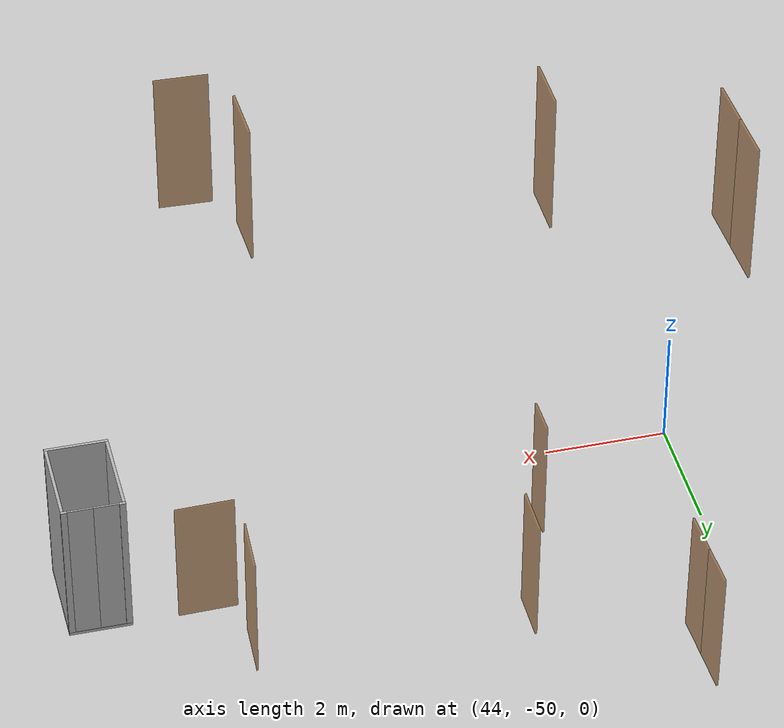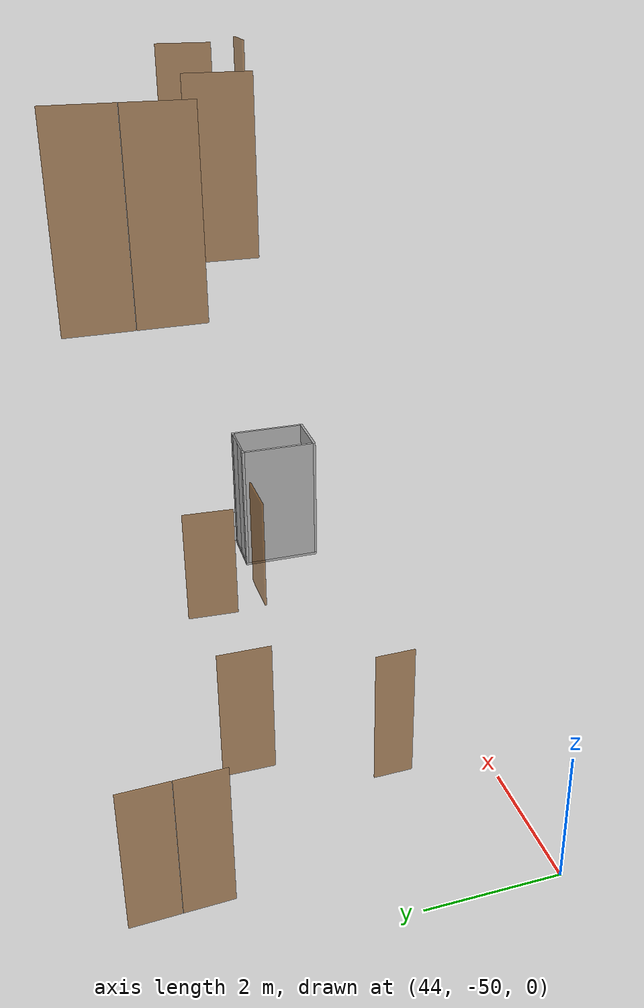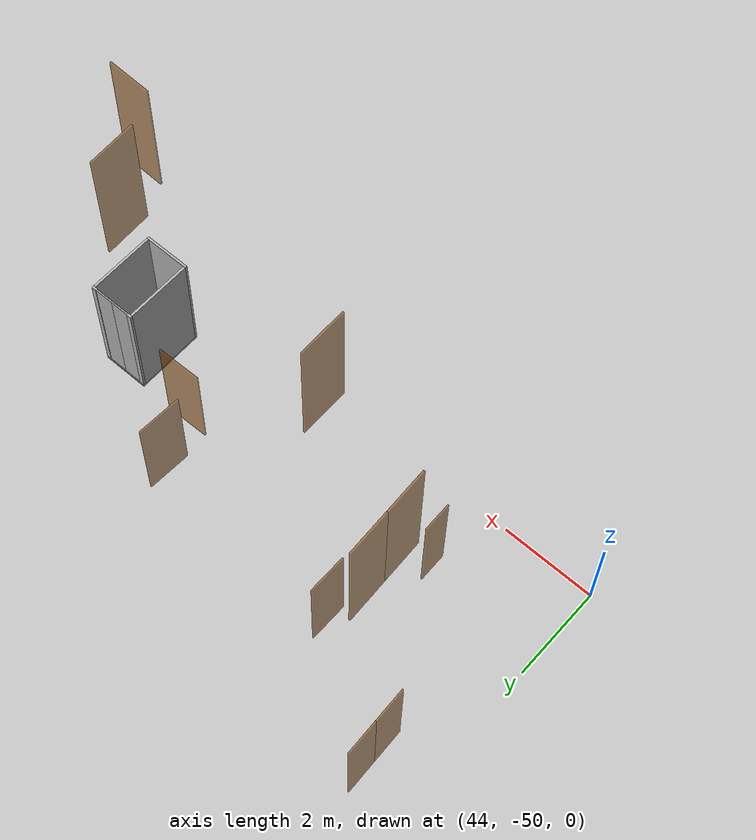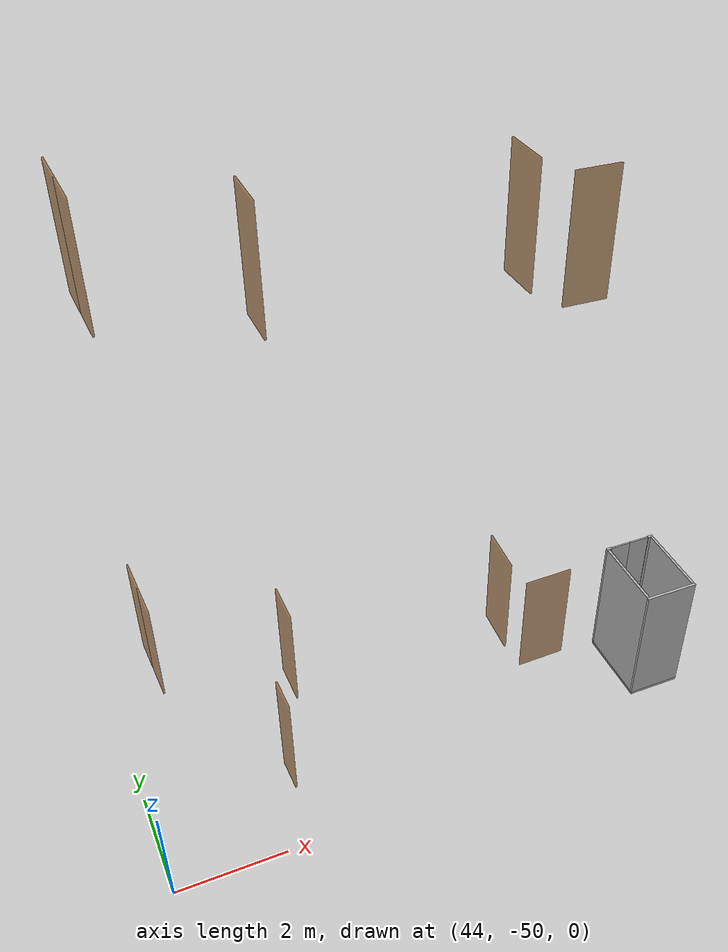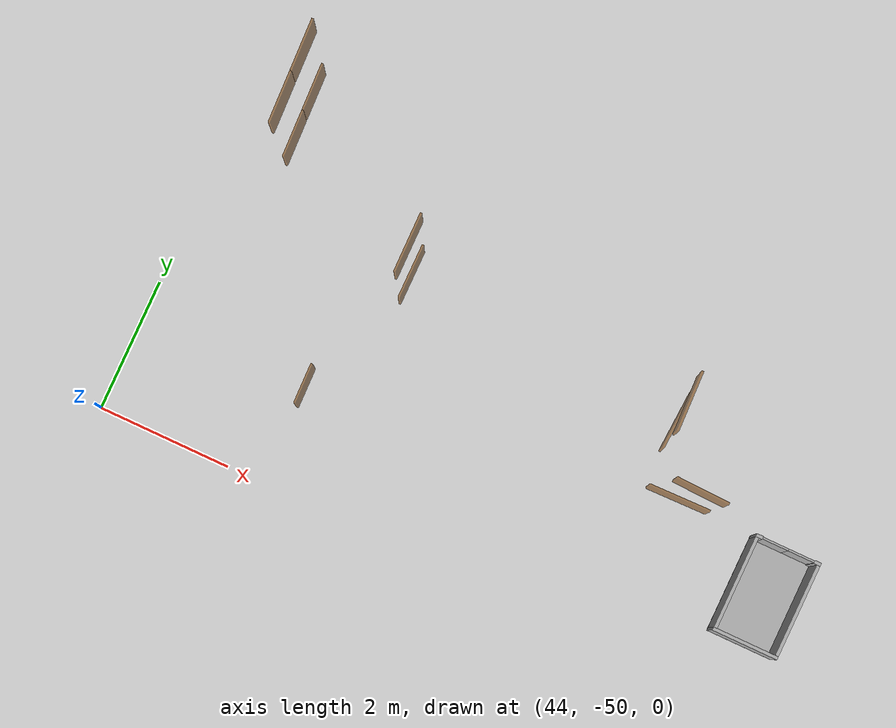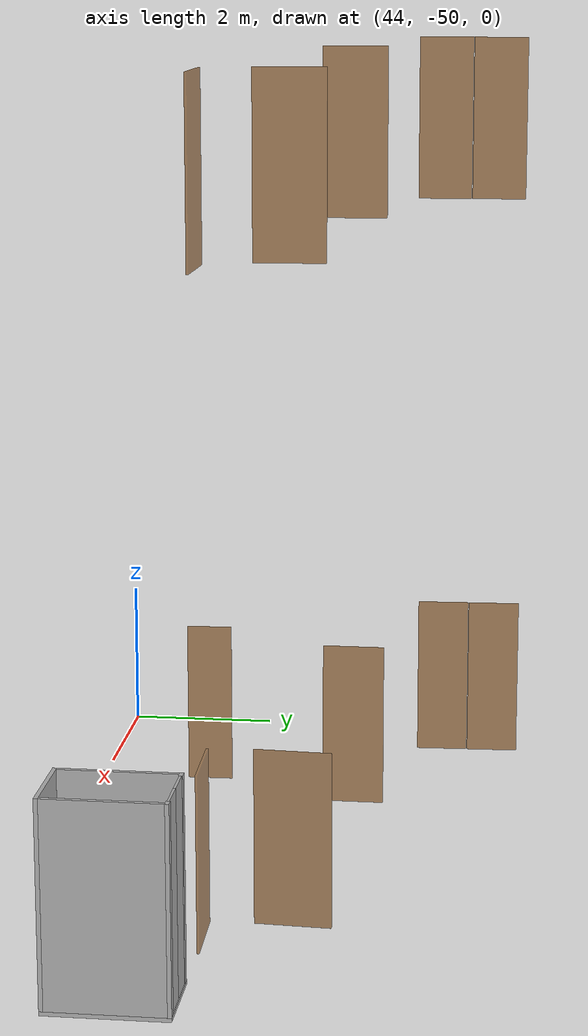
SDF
<sdf version="1.7">
 <world name="sim_world">
  <model name="bano01">
   <pose>47.27149607737123 -46.41799548548202 0.0 0 0 1.5707963267948966</pose>
   <link name="right">
    <pose>0 0 1.11 0 0 0</pose>
    <visual name="right_visual">
     <geometry><box><size>0.8199446803225976 0.03 2.2</size></box></geometry>
     <material>
      <ambient>0.5 0.25 0 0.6</ambient>
      <diffuse>0.5 0.25 0 0.6</diffuse>
      <pbr><metal><metalness>0.0</metalness></metal></pbr>
     </material>
    </visual>
    <collision name="right_collision">
     <geometry><box><size>0.8199446803225976 0.03 2.2</size></box></geometry>
     <surface><contact><collide_bitmask>0x02</collide_bitmask></contact></surface>
    </collision>
    <inertial>
     <mass>50.0</mass>
     <inertia><ixx>20.17041666666667</ixx><iyy>22.967955328288866</iyy><izz>2.805038661622195</izz></inertia>
    </inertial>
   </link>
   <joint name="right_joint" type="revolute">
    <parent>world</parent>
    <child>right</child>
    <axis><xyz>0 0 -1</xyz><limit><lower>0</lower><upper>1.57</upper></limit></axis>
    <pose>0.4149723401612988 0 0 0 0 0</pose>
   </joint>
   <plugin name="register_component" filename="libregister_component.so">
    <component name="Door">
     <v_max_door>0.5</v_max_door>
     <a_max_door>0.3</a_max_door>
     <a_nom_door>0.15</a_nom_door>
     <dx_min_door>0.01</dx_min_door>
     <f_max_door>500.0</f_max_door>
     <ros_interface>true</ros_interface>
     <door name="bano01" type="SwingDoor" left_joint_name="empty_joint" right_joint_name="right_joint"/>
    </component>
   </plugin>
  </model>
  <model name="bano02">
   <pose>46.556525343689856 -48.4981205128844 0.0 0 0 1.5918249008363818</pose>
   <link name="right">
    <pose>0 0 1.11 0 0 0</pose>
    <visual name="right_visual">
     <geometry><box><size>0.6101771898056049 0.03 2.2</size></box></geometry>
     <material>
      <ambient>0.5 0.25 0 0.6</ambient>
      <diffuse>0.5 0.25 0 0.6</diffuse>
      <pbr><metal><metalness>0.0</metalness></metal></pbr>
     </material>
    </visual>
    <collision name="right_collision">
     <geometry><box><size>0.6101771898056049 0.03 2.2</size></box></geometry>
     <surface><contact><collide_bitmask>0x02</collide_bitmask></contact></surface>
    </collision>
    <inertial>
     <mass>50.0</mass>
     <inertia><ixx>20.17041666666667</ixx><iyy>21.717984178996108</iyy><izz>1.5550675123294382</izz></inertia>
    </inertial>
   </link>
   <joint name="right_joint" type="revolute">
    <parent>world</parent>
    <child>right</child>
    <axis><xyz>0 0 -1</xyz><limit><lower>0</lower><upper>1.57</upper></limit></axis>
    <pose>0.31008859490280244 0 0 0 0 0</pose>
   </joint>
   <plugin name="register_component" filename="libregister_component.so">
    <component name="Door">
     <v_max_door>0.5</v_max_door>
     <a_max_door>0.3</a_max_door>
     <a_nom_door>0.15</a_nom_door>
     <dx_min_door>0.01</dx_min_door>
     <f_max_door>500.0</f_max_door>
     <ros_interface>true</ros_interface>
     <door name="bano02" type="SwingDoor" left_joint_name="empty_joint" right_joint_name="right_joint"/>
    </component>
   </plugin>
  </model>
  <model name="bano05">
   <pose>52.06670083466635 -47.72443394818039 0.0 0 0 -3.1200870272772754</pose>
   <link name="right">
    <pose>0 0 1.11 0 0 0</pose>
    <visual name="right_visual">
     <geometry><box><size>0.9377301620501713 0.03 2.2</size></box></geometry>
     <material>
      <ambient>0.5 0.25 0 0.6</ambient>
      <diffuse>0.5 0.25 0 0.6</diffuse>
      <pbr><metal><metalness>0.0</metalness></metal></pbr>
     </material>
    </visual>
    <collision name="right_collision">
     <geometry><box><size>0.9377301620501713 0.03 2.2</size></box></geometry>
     <surface><contact><collide_bitmask>0x02</collide_bitmask></contact></surface>
    </collision>
    <inertial>
     <mass>50.0</mass>
     <inertia><ixx>20.17041666666667</ixx><iyy>23.830574403411006</iyy><izz>3.6676577367443364</izz></inertia>
    </inertial>
   </link>
   <joint name="right_joint" type="revolute">
    <parent>world</parent>
    <child>right</child>
    <axis><xyz>0 0 -1</xyz><limit><lower>0</lower><upper>1.57</upper></limit></axis>
    <pose>0.4738650810250857 0 0 0 0 0</pose>
   </joint>
   <plugin name="register_component" filename="libregister_component.so">
    <component name="Door">
     <v_max_door>0.5</v_max_door>
     <a_max_door>0.3</a_max_door>
     <a_nom_door>0.15</a_nom_door>
     <dx_min_door>0.01</dx_min_door>
     <f_max_door>500.0</f_max_door>
     <ros_interface>true</ros_interface>
     <door name="bano05" type="SwingDoor" left_joint_name="empty_joint" right_joint_name="right_joint"/>
    </component>
   </plugin>
  </model>
  <model name="TD0007CW">
   <pose>51.58219422672672 -46.71441391912132 0.0 0 0 1.5172743729555838</pose>
   <link name="right">
    <pose>0 0 1.11 0 0 0</pose>
    <visual name="right_visual">
     <geometry><box><size>0.9398812216442772 0.03 2.2</size></box></geometry>
     <material>
      <ambient>0.5 0.25 0 0.6</ambient>
      <diffuse>0.5 0.25 0 0.6</diffuse>
      <pbr><metal><metalness>0.0</metalness></metal></pbr>
     </material>
    </visual>
    <collision name="right_collision">
     <geometry><box><size>0.9398812216442772 0.03 2.2</size></box></geometry>
     <surface><contact><collide_bitmask>0x02</collide_bitmask></contact></surface>
    </collision>
    <inertial>
     <mass>50.0</mass>
     <inertia><ixx>20.17041666666667</ixx><iyy>23.847402961664752</iyy><izz>3.6844862949980794</izz></inertia>
    </inertial>
   </link>
   <joint name="right_joint" type="revolute">
    <parent>world</parent>
    <child>right</child>
    <axis><xyz>0 0 -1</xyz><limit><lower>0</lower><upper>1.57</upper></limit></axis>
    <pose>0.4749406108221386 0 0 0 0 0</pose>
   </joint>
   <plugin name="register_component" filename="libregister_component.so">
    <component name="Door">
     <v_max_door>0.5</v_max_door>
     <a_max_door>0.3</a_max_door>
     <a_nom_door>0.15</a_nom_door>
     <dx_min_door>0.01</dx_min_door>
     <f_max_door>500.0</f_max_door>
     <ros_interface>true</ros_interface>
     <door name="TD0007CW" type="SwingDoor" left_joint_name="empty_joint" right_joint_name="right_joint"/>
    </component>
   </plugin>
  </model>
  <model name="TD1001CP2">
   <pose>44.922773056907744 -44.991499308662824 0.0 0 0 -1.5348843775082168</pose>
   <link name="right">
    <pose>0.3594509958894393 0 1.11 0 0 0</pose>
    <visual name="right_visual">
     <geometry><box><size>0.7089019917788786 0.03 2.2</size></box></geometry>
     <material>
      <ambient>0.5 0.25 0 0.6</ambient>
      <diffuse>0.5 0.25 0 0.6</diffuse>
      <pbr><metal><metalness>0.0</metalness></metal></pbr>
     </material>
    </visual>
    <collision name="right_collision">
     <geometry><box><size>0.7089019917788786 0.03 2.2</size></box></geometry>
     <surface><contact><collide_bitmask>0x02</collide_bitmask></contact></surface>
    </collision>
    <inertial>
     <mass>50.0</mass>
     <inertia><ixx>20.17041666666667</ixx><iyy>22.260591808116928</iyy><izz>2.0976751414502552</izz></inertia>
    </inertial>
   </link>
   <joint name="right_joint" type="revolute">
    <parent>world</parent>
    <child>right</child>
    <axis><xyz>0 0 -1</xyz><limit><lower>0</lower><upper>1.57</upper></limit></axis>
    <pose>0.3594509958894393 0 0 0 0 0</pose>
   </joint>
   <link name="left">
    <pose>-0.3594509958894393 0 1.11 0 0 0</pose>
    <visual name="left_visual">
     <geometry><box><size>0.7089019917788786 0.03 2.2</size></box></geometry>
     <material>
      <ambient>0.5 0.25 0 0.6</ambient>
      <diffuse>0.5 0.25 0 0.6</diffuse>
      <pbr><metal><metalness>0.0</metalness></metal></pbr>
     </material>
    </visual>
    <collision name="left_collision">
     <geometry><box><size>0.7089019917788786 0.03 2.2</size></box></geometry>
     <surface><contact><collide_bitmask>0x02</collide_bitmask></contact></surface>
    </collision>
    <inertial>
     <mass>50.0</mass>
     <inertia><ixx>20.17041666666667</ixx><iyy>22.260591808116928</iyy><izz>2.0976751414502552</izz></inertia>
    </inertial>
   </link>
   <joint name="left_joint" type="revolute">
    <parent>world</parent>
    <child>left</child>
    <axis><xyz>0 0 -1</xyz><limit><lower>-1.57</lower><upper>0</upper></limit></axis>
    <pose>-0.3594509958894393 0 0 0 0 0</pose>
   </joint>
   <plugin name="register_component" filename="libregister_component.so">
    <component name="Door">
     <v_max_door>0.5</v_max_door>
     <a_max_door>0.3</a_max_door>
     <a_nom_door>0.15</a_nom_door>
     <dx_min_door>0.01</dx_min_door>
     <f_max_door>500.0</f_max_door>
     <ros_interface>true</ros_interface>
     <door name="TD1001CP2" type="DoubleSwingDoor" left_joint_name="left_joint" right_joint_name="right_joint"/>
    </component>
   </plugin>
  </model>
  <model name="TD1118CP4">
   <pose>44.94644914665497 -45.02413210114766 8.0 0 0 -1.5336877245950296</pose>
   <link name="right">
    <pose>0.3714555084669651 0 1.11 0 0 0</pose>
    <visual name="right_visual">
     <geometry><box><size>0.7329110169339302 0.03 2.2</size></box></geometry>
     <material>
      <ambient>0.5 0.25 0 0.6</ambient>
      <diffuse>0.5 0.25 0 0.6</diffuse>
      <pbr><metal><metalness>0.0</metalness></metal></pbr>
     </material>
    </visual>
    <collision name="right_collision">
     <geometry><box><size>0.7329110169339302 0.03 2.2</size></box></geometry>
     <surface><contact><collide_bitmask>0x02</collide_bitmask></contact></surface>
    </collision>
    <inertial>
     <mass>50.0</mass>
     <inertia><ixx>20.17041666666667</ixx><iyy>22.40482732809637</iyy><izz>2.2419106614296993</izz></inertia>
    </inertial>
   </link>
   <joint name="right_joint" type="revolute">
    <parent>world</parent>
    <child>right</child>
    <axis><xyz>0 0 -1</xyz><limit><lower>0</lower><upper>1.57</upper></limit></axis>
    <pose>0.3714555084669651 0 0 0 0 0</pose>
   </joint>
   <link name="left">
    <pose>-0.3714555084669651 0 1.11 0 0 0</pose>
    <visual name="left_visual">
     <geometry><box><size>0.7329110169339302 0.03 2.2</size></box></geometry>
     <material>
      <ambient>0.5 0.25 0 0.6</ambient>
      <diffuse>0.5 0.25 0 0.6</diffuse>
      <pbr><metal><metalness>0.0</metalness></metal></pbr>
     </material>
    </visual>
    <collision name="left_collision">
     <geometry><box><size>0.7329110169339302 0.03 2.2</size></box></geometry>
     <surface><contact><collide_bitmask>0x02</collide_bitmask></contact></surface>
    </collision>
    <inertial>
     <mass>50.0</mass>
     <inertia><ixx>20.17041666666667</ixx><iyy>22.40482732809637</iyy><izz>2.2419106614296993</izz></inertia>
    </inertial>
   </link>
   <joint name="left_joint" type="revolute">
    <parent>world</parent>
    <child>left</child>
    <axis><xyz>0 0 -1</xyz><limit><lower>-1.57</lower><upper>0</upper></limit></axis>
    <pose>-0.3714555084669651 0 0 0 0 0</pose>
   </joint>
   <plugin name="register_component" filename="libregister_component.so">
    <component name="Door">
     <v_max_door>0.5</v_max_door>
     <a_max_door>0.3</a_max_door>
     <a_nom_door>0.15</a_nom_door>
     <dx_min_door>0.01</dx_min_door>
     <f_max_door>500.0</f_max_door>
     <ros_interface>true</ros_interface>
     <door name="TD1118CP4" type="DoubleSwingDoor" left_joint_name="left_joint" right_joint_name="right_joint"/>
    </component>
   </plugin>
  </model>
  <model name="TD0114CW">
   <pose>51.50515808954793 -46.74820920088596 8.0 0 0 1.6056425163225825</pose>
   <link name="right">
    <pose>0 0 1.11 0 0 0</pose>
    <visual name="right_visual">
     <geometry><box><size>0.8454856513248106 0.03 2.2</size></box></geometry>
     <material>
      <ambient>0.5 0.25 0 0.6</ambient>
      <diffuse>0.5 0.25 0 0.6</diffuse>
      <pbr><metal><metalness>0.0</metalness></metal></pbr>
     </material>
    </visual>
    <collision name="right_collision">
     <geometry><box><size>0.8454856513248106 0.03 2.2</size></box></geometry>
     <surface><contact><collide_bitmask>0x02</collide_bitmask></contact></surface>
    </collision>
    <inertial>
     <mass>50.0</mass>
     <inertia><ixx>20.17041666666667</ixx><iyy>23.145191610817253</iyy><izz>2.9822749441505803</izz></inertia>
    </inertial>
   </link>
   <joint name="right_joint" type="revolute">
    <parent>world</parent>
    <child>right</child>
    <axis><xyz>0 0 -1</xyz><limit><lower>0</lower><upper>1.57</upper></limit></axis>
    <pose>0.4277428256624053 0 0 0 0 0</pose>
   </joint>
   <plugin name="register_component" filename="libregister_component.so">
    <component name="Door">
     <v_max_door>0.5</v_max_door>
     <a_max_door>0.3</a_max_door>
     <a_nom_door>0.15</a_nom_door>
     <dx_min_door>0.01</dx_min_door>
     <f_max_door>500.0</f_max_door>
     <ros_interface>true</ros_interface>
     <door name="TD0114CW" type="SwingDoor" left_joint_name="empty_joint" right_joint_name="right_joint"/>
    </component>
   </plugin>
  </model>
  <model name="bano1">
   <pose>47.28208015738405 -46.41913130619041 8.0 0 0 1.5764696971908632</pose>
   <link name="right">
    <pose>0 0 1.11 0 0 0</pose>
    <visual name="right_visual">
     <geometry><box><size>0.8397545239237783 0.03 2.2</size></box></geometry>
     <material>
      <ambient>0.5 0.25 0 0.6</ambient>
      <diffuse>0.5 0.25 0 0.6</diffuse>
      <pbr><metal><metalness>0.0</metalness></metal></pbr>
     </material>
    </visual>
    <collision name="right_collision">
     <geometry><box><size>0.8397545239237783 0.03 2.2</size></box></geometry>
     <surface><contact><collide_bitmask>0x02</collide_bitmask></contact></surface>
    </collision>
    <inertial>
     <mass>50.0</mass>
     <inertia><ixx>20.17041666666667</ixx><iyy>23.104948585210217</iyy><izz>2.942031918543548</izz></inertia>
    </inertial>
   </link>
   <joint name="right_joint" type="revolute">
    <parent>world</parent>
    <child>right</child>
    <axis><xyz>0 0 -1</xyz><limit><lower>0</lower><upper>1.57</upper></limit></axis>
    <pose>0.42487726196188913 0 0 0 0 0</pose>
   </joint>
   <plugin name="register_component" filename="libregister_component.so">
    <component name="Door">
     <v_max_door>0.5</v_max_door>
     <a_max_door>0.3</a_max_door>
     <a_nom_door>0.15</a_nom_door>
     <dx_min_door>0.01</dx_min_door>
     <f_max_door>500.0</f_max_door>
     <ros_interface>true</ros_interface>
     <door name="bano1" type="SwingDoor" left_joint_name="empty_joint" right_joint_name="right_joint"/>
    </component>
   </plugin>
  </model>
  <model name="bano5">
   <pose>52.148068485913775 -47.74097451939845 8.0 0 0 3.1065786581625146</pose>
   <link name="right">
    <pose>0 0 1.11 0 0 0</pose>
    <visual name="right_visual">
     <geometry><box><size>0.7657234564264961 0.03 2.2</size></box></geometry>
     <material>
      <ambient>0.5 0.25 0 0.6</ambient>
      <diffuse>0.5 0.25 0 0.6</diffuse>
      <pbr><metal><metalness>0.0</metalness></metal></pbr>
     </material>
    </visual>
    <collision name="right_collision">
     <geometry><box><size>0.7657234564264961 0.03 2.2</size></box></geometry>
     <surface><contact><collide_bitmask>0x02</collide_bitmask></contact></surface>
    </collision>
    <inertial>
     <mass>50.0</mass>
     <inertia><ixx>20.17041666666667</ixx><iyy>22.60971838217392</iyy><izz>2.44680171550725</izz></inertia>
    </inertial>
   </link>
   <joint name="right_joint" type="revolute">
    <parent>world</parent>
    <child>right</child>
    <axis><xyz>0 0 -1</xyz><limit><lower>0</lower><upper>1.57</upper></limit></axis>
    <pose>0.38786172821324805 0 0 0 0 0</pose>
   </joint>
   <plugin name="register_component" filename="libregister_component.so">
    <component name="Door">
     <v_max_door>0.5</v_max_door>
     <a_max_door>0.3</a_max_door>
     <a_nom_door>0.15</a_nom_door>
     <dx_min_door>0.01</dx_min_door>
     <f_max_door>500.0</f_max_door>
     <ros_interface>true</ros_interface>
     <door name="bano5" type="SwingDoor" left_joint_name="empty_joint" right_joint_name="right_joint"/>
    </component>
   </plugin>
  </model>
  <model name="lift2td0">
   <link name="platform">
    <inertial><mass>1200</mass><inertia><ixx>100.25</ixx><iyy>225.25</iyy><izz>325.0</izz></inertia></inertial>
    <visual name="floor_visual">
     <pose>0 0 -0.025 0 0 0</pose>
     <geometry><box><size>1.0 1.5 0.05</size></box></geometry>
     <material>
      <ambient>0.5 0.5 0.5 1</ambient>
      <diffuse>0.7 0.7 0.7 1</diffuse>
      <specular>0.6 0.6 0.6 1</specular>
      <emissive>0.1 0.1 0.1 1</emissive>
     </material>
    </visual>
    <collision name="floor_collision">
     <pose>0 0 -0.025 0 0 0</pose>
     <geometry><box><size>1.0 1.5 0.05</size></box></geometry>
     <surface><contact><collide_bitmask>0x01</collide_bitmask></contact></surface>
    </collision>
    <visual name="frontwall1_visual">
     <pose>-0.45 0.725 1.25 0 0 0</pose>
     <geometry><box><size>0.09999999999999998 0.05 2.5</size></box></geometry>
     <material>
      <ambient>0.5 0.5 0.5 1</ambient>
      <diffuse>0.7 0.7 0.7 1</diffuse>
      <specular>0.6 0.6 0.6 1</specular>
      <emissive>0.1 0.1 0.1 1</emissive>
     </material>
    </visual>
    <collision name="frontwall1_collision">
     <pose>-0.45 0.725 1.25 0 0 0</pose>
     <geometry><box><size>0.09999999999999998 0.05 2.5</size></box></geometry>
     <surface><contact><collide_bitmask>0x01</collide_bitmask></contact></surface>
    </collision>
    <visual name="frontwall2_visual">
     <pose>0.45 0.725 1.25 0 0 0</pose>
     <geometry><box><size>0.09999999999999998 0.05 2.5</size></box></geometry>
     <material>
      <ambient>0.5 0.5 0.5 1</ambient>
      <diffuse>0.7 0.7 0.7 1</diffuse>
      <specular>0.6 0.6 0.6 1</specular>
      <emissive>0.1 0.1 0.1 1</emissive>
     </material>
    </visual>
    <collision name="frontwall2_collision">
     <pose>0.45 0.725 1.25 0 0 0</pose>
     <geometry><box><size>0.09999999999999998 0.05 2.5</size></box></geometry>
     <surface><contact><collide_bitmask>0x01</collide_bitmask></contact></surface>
    </collision>
    <visual name="backwall1_visual">
     <pose>0.0 -0.725 1.25 0 0 0</pose>
     <geometry><box><size>1.0 0.05 2.5</size></box></geometry>
     <material>
      <ambient>0.5 0.5 0.5 1</ambient>
      <diffuse>0.7 0.7 0.7 1</diffuse>
      <specular>0.6 0.6 0.6 1</specular>
      <emissive>0.1 0.1 0.1 1</emissive>
     </material>
    </visual>
    <collision name="backwall1_collision">
     <pose>0.0 -0.725 1.25 0 0 0</pose>
     <geometry><box><size>1.0 0.05 2.5</size></box></geometry>
     <surface><contact><collide_bitmask>0x01</collide_bitmask></contact></surface>
    </collision>
    <visual name="leftwall1_visual">
     <pose>-0.475 0.0 1.25 0 0 1.5707963267948966</pose>
     <geometry><box><size>1.4 0.05 2.5</size></box></geometry>
     <material>
      <ambient>0.5 0.5 0.5 1</ambient>
      <diffuse>0.7 0.7 0.7 1</diffuse>
      <specular>0.6 0.6 0.6 1</specular>
      <emissive>0.1 0.1 0.1 1</emissive>
     </material>
    </visual>
    <collision name="leftwall1_collision">
     <pose>-0.475 0.0 1.25 0 0 1.5707963267948966</pose>
     <geometry><box><size>1.4 0.05 2.5</size></box></geometry>
     <surface><contact><collide_bitmask>0x01</collide_bitmask></contact></surface>
    </collision>
    <visual name="rightwall1_visual">
     <pose>0.475 0.0 1.25 0 0 1.5707963267948966</pose>
     <geometry><box><size>1.4 0.05 2.5</size></box></geometry>
     <material>
      <ambient>0.5 0.5 0.5 1</ambient>
      <diffuse>0.7 0.7 0.7 1</diffuse>
      <specular>0.6 0.6 0.6 1</specular>
      <emissive>0.1 0.1 0.1 1</emissive>
     </material>
    </visual>
    <collision name="rightwall1_collision">
     <pose>0.475 0.0 1.25 0 0 1.5707963267948966</pose>
     <geometry><box><size>1.4 0.05 2.5</size></box></geometry>
     <surface><contact><collide_bitmask>0x01</collide_bitmask></contact></surface>
    </collision>
   </link>
   <joint name="cabin_joint" type="prismatic">
    <parent>world</parent>
    <child>platform</child>
    <axis><xyz>0 0 1</xyz></axis>
   </joint>
   <model name="CabinDoor_lift2td0_lift2_door">
    <pose>0.0 0.725 0 0 0 0.0</pose>
    <link name="right_door">
     <pose>0.2 0 1.25 0 0 0</pose>
     <visual name="right_door_visual">
      <geometry><box><size>0.4 0.03 2.5</size></box></geometry>
      <material>
       <ambient>0.5 0.5 0.5 1</ambient>
       <diffuse>0.7 0.7 0.7 1</diffuse>
       <specular>0.6 0.6 0.6 1</specular>
       <emissive>0.1 0.1 0.1 1</emissive>
      </material>
     </visual>
     <collision name="right_door_collision">
      <geometry><box><size>0.4 0.03 2.5</size></box></geometry>
      <surface><contact><collide_bitmask>0x02</collide_bitmask></contact></surface>
     </collision>
    </link>
    <link name="left_door">
     <pose>-0.2 0 1.25 0 0 0</pose>
     <visual name="left_door_visual">
      <geometry><box><size>0.4 0.03 2.5</size></box></geometry>
      <material>
       <ambient>0.5 0.5 0.5 1</ambient>
       <diffuse>0.7 0.7 0.7 1</diffuse>
       <specular>0.6 0.6 0.6 1</specular>
       <emissive>0.1 0.1 0.1 1</emissive>
      </material>
     </visual>
     <collision name="left_door_collision">
      <geometry><box><size>0.4 0.03 2.5</size></box></geometry>
      <surface><contact><collide_bitmask>0x02</collide_bitmask></contact></surface>
     </collision>
    </link>
    <plugin name="register_component" filename="libregister_component.so">
     <component name="Door">
      <v_max_door>0.3</v_max_door>
      <a_max_door>0.2</a_max_door>
      <a_nom_door>0.1</a_nom_door>
      <dx_min_door>0.0001</dx_min_door>
      <f_max_door>35.0</f_max_door>
      <door left_joint_name="CabinDoor_lift2td0_lift2_door_left_joint" name="CabinDoor_lift2td0_lift2_door" right_joint_name="CabinDoor_lift2td0_lift2_door_right_joint" type="DoubleSlidingDoor"/>
     </component>
    </plugin>
   </model>
   <joint name="CabinDoor_lift2td0_lift2_door_right_joint" type="prismatic">
    <parent>platform</parent>
    <child>CabinDoor_lift2td0_lift2_door::right_door</child>
    <axis><xyz>1 0 0</xyz><limit><lower>0</lower><upper>0.4</upper></limit></axis>
   </joint>
   <joint name="CabinDoor_lift2td0_lift2_door_left_joint" type="prismatic">
    <parent>platform</parent>
    <child>CabinDoor_lift2td0_lift2_door::left_door</child>
    <axis><xyz>1 0 0</xyz><limit><lower>-0.4</lower><upper>0</upper></limit></axis>
   </joint>
   <plugin name="register_component" filename="libregister_component.so">
    <component name="Lift">
     <lift_name>lift2td0</lift_name>
     <floor name="L1" elevation="0.0">
      <door_pair cabin_door="CabinDoor_lift2td0_lift2_door" shaft_door="ShaftDoor_lift2td0_L1_lift2_door"/>
     </floor>
     <floor name="L2" elevation="8.0">
      <door_pair cabin_door="CabinDoor_lift2td0_lift2_door" shaft_door="ShaftDoor_lift2td0_L2_lift2_door"/>
     </floor>
     <initial_floor>L1</initial_floor>
     <v_max_cabin>2.0</v_max_cabin>
     <a_max_cabin>1.2</a_max_cabin>
     <a_nom_cabin>1.0</a_nom_cabin>
     <dx_min_cabin>0.001</dx_min_cabin>
     <f_max_cabin>25323.0</f_max_cabin>
     <cabin_joint_name>cabin_joint</cabin_joint_name>
    </component>
   </plugin>
   <pose>53.75551043547694 -48.480961394835155 0 0 0 0.0</pose>
  </model>
 </world>
</sdf>
